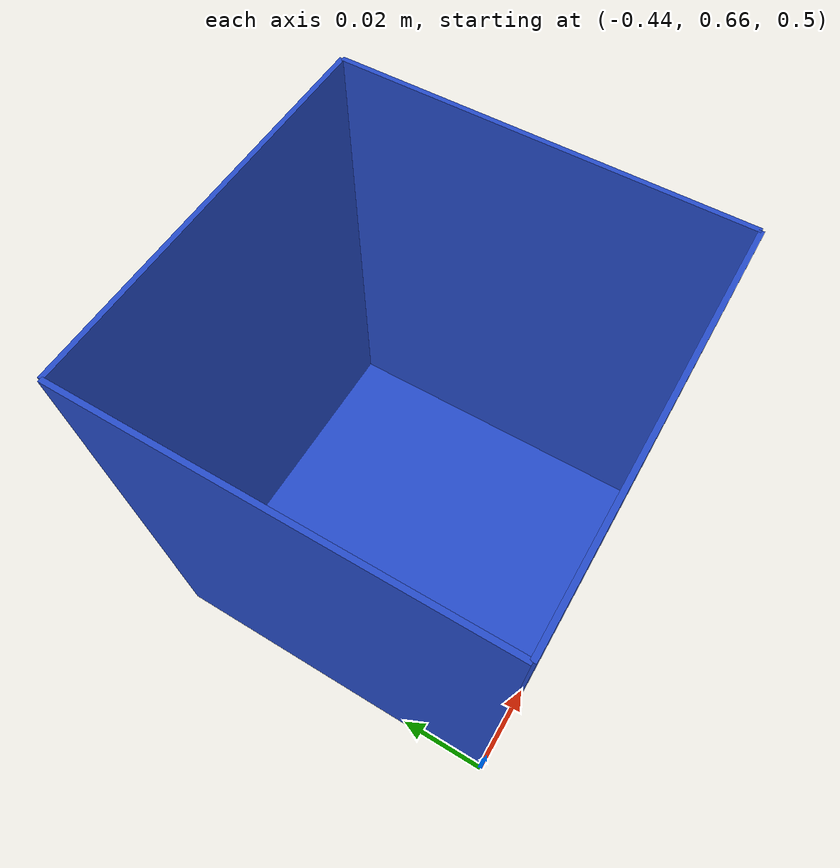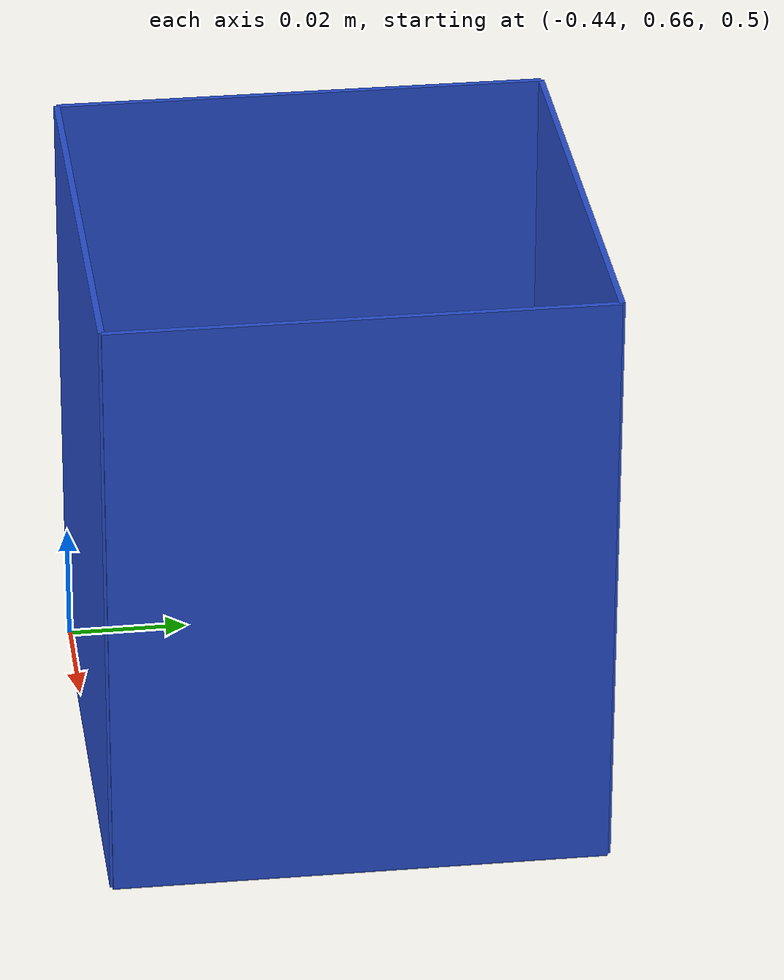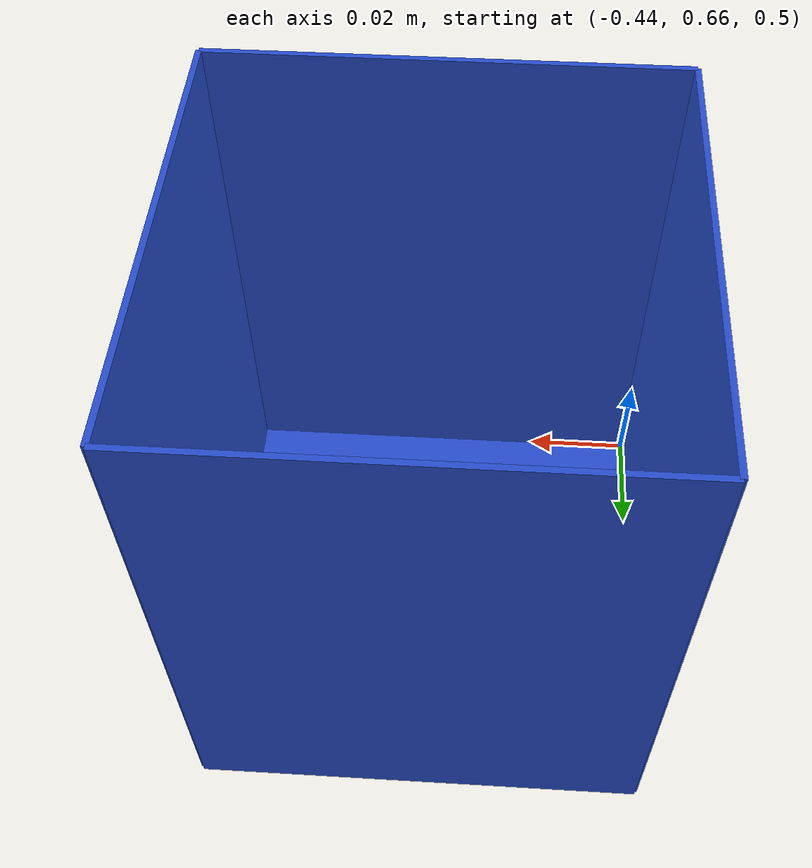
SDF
<sdf version="1.6">
 <world name="default">
  <light name="sun" type="directional">
   <pose>0 0 10 0 -0 0</pose>
   <diffuse>0.8 0.8 0.8 1</diffuse>
   <specular>0.2 0.2 0.2 1</specular>
   <attenuation>
    <range>1000</range>
    <constant>0.9</constant>
    <linear>0.01</linear>
    <quadratic>0.001</quadratic>
   </attenuation>
   <direction>-0.5 0.1 -0.9</direction>
  </light>
  <model name="ground_plane">
   <static>1</static>
   <link name="link">
    <collision name="collision">
     <geometry><plane><normal>0 0 1</normal><size>100 100</size></plane></geometry>
     <surface>
      <contact><collide_bitmask>65535</collide_bitmask></contact>
      <friction><ode><mu>100</mu><mu2>50</mu2></ode></friction>
     </surface>
    </collision>
    <visual name="visual">
     <cast_shadows>0</cast_shadows>
     <geometry><plane><normal>0 0 1</normal><size>100 100</size></plane></geometry>
     <material>
      <script><uri>file://media/materials/scripts/gazebo.material</uri><name>Gazebo/White</name></script>
     </material>
    </visual>
   </link>
  </model>
  <gravity>0 0 -9.8</gravity>
  <magnetic_field>6e-06 2.3e-05 -4.2e-05</magnetic_field>
  <atmosphere type="adiabatic"/>
  <physics name="default_physics" default="0" type="ode">
   <max_step_size>0.001</max_step_size>
   <real_time_factor>1</real_time_factor>
   <real_time_update_rate>1000</real_time_update_rate>
  </physics>
  <scene><ambient>0.4 0.4 0.4 1</ambient><background>0.7 0.7 0.7 1</background><shadows>1</shadows></scene>
  <audio><device>default</device></audio>
  <spherical_coordinates>
   <surface_model>EARTH_WGS84</surface_model>
   <latitude_deg>0</latitude_deg>
   <longitude_deg>0</longitude_deg>
   <elevation>0</elevation>
   <heading_deg>0</heading_deg>
  </spherical_coordinates>
  <model name="bin">
   <link name="bottom">
    <inertial>
     <pose>0 0 0.04 0 -0 0</pose>
     <mass>0.005</mass>
     <inertia>
      <ixx>0.0050052</ixx>
      <ixy>0</ixy>
      <ixz>0</ixz>
      <iyy>0.0050052</iyy>
      <iyz>0</iyz>
      <izz>0.0050064</izz>
     </inertia>
    </inertial>
    <collision name="bottom_collision">
     <geometry><box><size>0.08 0.08 0.001</size></box></geometry>
     <surface><friction><ode><mu>10</mu><mu2>10</mu2></ode></friction></surface>
    </collision>
    <collision name="bottom_fixed_joint_lump__back_collision_1">
     <pose>0 0.04 0.05 0 -0 0</pose>
     <geometry><box><size>0.08 0.001 0.1</size></box></geometry>
     <surface><friction><ode><mu>10</mu><mu2>10</mu2></ode></friction></surface>
    </collision>
    <collision name="bottom_fixed_joint_lump__front_collision_2">
     <pose>0 -0.04 0.05 0 -0 0</pose>
     <geometry><box><size>0.08 0.001 0.1</size></box></geometry>
     <surface><friction><ode><mu>10</mu><mu2>10</mu2></ode></friction></surface>
    </collision>
    <collision name="bottom_fixed_joint_lump__left_collision_3">
     <pose>-0.04 0 0.05 0 -0 0</pose>
     <geometry><box><size>0.001 0.08 0.1</size></box></geometry>
     <surface><friction><ode><mu>10</mu><mu2>10</mu2></ode></friction></surface>
    </collision>
    <collision name="bottom_fixed_joint_lump__right_collision_4">
     <pose>0.04 0 0.05 0 -0 0</pose>
     <geometry><box><size>0.001 0.08 0.1</size></box></geometry>
     <surface><friction><ode><mu>10</mu><mu2>10</mu2></ode></friction></surface>
    </collision>
    <visual name="bottom_visual">
     <geometry><box><size>0.08 0.08 0.001</size></box></geometry>
     <material>
      <script><name>Gazebo/Blue</name><uri>file://media/materials/scripts/gazebo.material</uri></script>
     </material>
    </visual>
    <visual name="bottom_fixed_joint_lump__back_visual_1">
     <pose>0 0.04 0.05 0 -0 0</pose>
     <geometry><box><size>0.08 0.001 0.1</size></box></geometry>
     <material>
      <script><name>Gazebo/Blue</name><uri>file://media/materials/scripts/gazebo.material</uri></script>
     </material>
    </visual>
    <visual name="bottom_fixed_joint_lump__front_visual_2">
     <pose>0 -0.04 0.05 0 -0 0</pose>
     <geometry><box><size>0.08 0.001 0.1</size></box></geometry>
     <material>
      <script><name>Gazebo/Blue</name><uri>file://media/materials/scripts/gazebo.material</uri></script>
     </material>
    </visual>
    <visual name="bottom_fixed_joint_lump__left_visual_3">
     <pose>-0.04 0 0.05 0 -0 0</pose>
     <geometry><box><size>0.001 0.08 0.1</size></box></geometry>
     <material>
      <script><name>Gazebo/Blue</name><uri>file://media/materials/scripts/gazebo.material</uri></script>
     </material>
    </visual>
    <visual name="bottom_fixed_joint_lump__right_visual_4">
     <pose>0.04 0 0.05 0 -0 0</pose>
     <geometry><box><size>0.001 0.08 0.1</size></box></geometry>
     <material>
      <script><name>Gazebo/Blue</name><uri>file://media/materials/scripts/gazebo.material</uri></script>
     </material>
    </visual>
   </link>
   <joint name="joint_fix" type="fixed"><child>bottom</child><parent>world</parent></joint>
   <pose>-0.4 0.7 0.5 0 -0 0</pose>
  </model>
 </world>
 <model name="cube3">
  <pose>0.1 0.2 0.8 0 0 0</pose>
  <link name="link">
   <pose>0 0 0.025 0 0 0</pose>
   <inertial>
    <mass>0.001</mass>
    <inertia>
     <ixx>2.3541666666666672e-05</ixx>
     <ixy>0</ixy>
     <ixz>0</ixz>
     <iyy>2.3541666666666672e-05</iyy>
     <iyz>0</iyz>
     <izz>2.3541666666666672e-05</izz>
    </inertia>
   </inertial>
   <collision name="collision">
    <geometry><box><size>0.1 0.01 0.01</size></box></geometry>
    <surface>
     <contact>
      <poissons_ratio>0.347</poissons_ratio>
      <elastic_modulus>8.8e+09</elastic_modulus>
      <ode><kp>100000</kp><kd>1</kd><max_vel>1.0</max_vel><min_depth>0.001</min_depth></ode>
     </contact>
     <friction>
      <torsional>
       <coefficient>1.0</coefficient>
       <use_patch_radius>0</use_patch_radius>
       <surface_radius>0.05</surface_radius>
      </torsional>
     </friction>
    </surface>
   </collision>
   <visual name="visual">
    <geometry><box><size>0.1 0.01 0.01</size></box></geometry>
    <material>
     <script><uri>file://media/materials/scripts/gazebo.material</uri><name>Gazebo/WoodPallet</name></script>
    </material>
   </visual>
  </link>
 </model>
</sdf>
